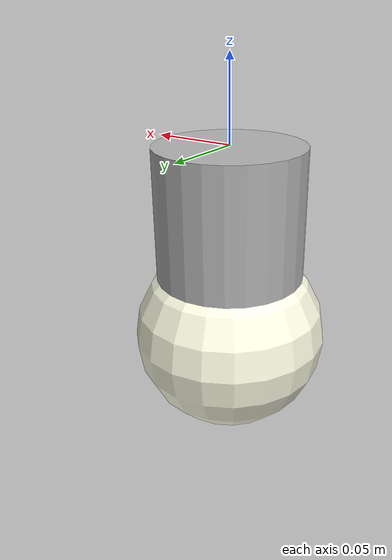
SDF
<?xml version="1.0" ?>
<sdf version="1.6">
  <model name="ledBulb">
    <static>true</static>
    <link name="lamp">
      <!-- Socket Visual -->
      <visual name="socket_visual">
        <pose>0 0 -0.04 0 0 0</pose>
        <geometry>
          <cylinder>
            <radius>0.045</radius>
            <length>0.08</length>
          </cylinder>
        </geometry>
        <material>
          <ambient>0.5 0.5 0.5 1</ambient>
          <diffuse>0.7 0.7 0.7 1</diffuse>
        </material>
      </visual>

      <!-- Bulb Visual (Sphere) -->
      <visual name="bulb_visual">
        <pose>0 0 -0.12 0 0 0</pose>
        <geometry>
          <sphere>
            <radius>0.06</radius>
          </sphere>
        </geometry>
        <material>
          <ambient>1 1 0.8 1</ambient>
          <diffuse>1 1 0.9 1</diffuse>
          <emissive>1 1 0.5 1</emissive>
        </material>
      </visual>

      <!-- Point Light Source -->
      <light name="led_light" type="point">
        <pose>0 0 -0.12 0 0 0</pose>
        <diffuse>1 1 1 1</diffuse>
        <specular>1 1 1 1</specular>
        <attenuation>
          <range>12</range>
          <constant>0.4</constant>
          <linear>0.02</linear>
          <quadratic>0.002</quadratic>
        </attenuation>
        <cast_shadows>true</cast_shadows>
      </light>
    </link>
  </model>
</sdf>
